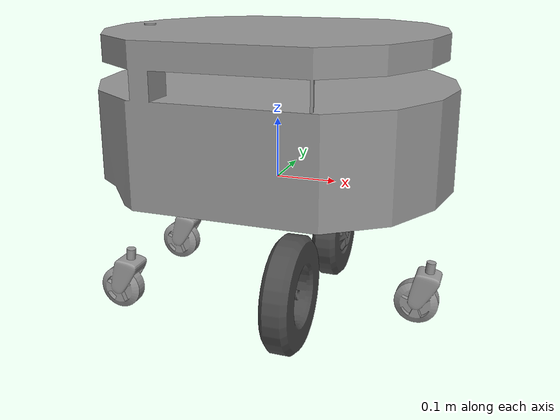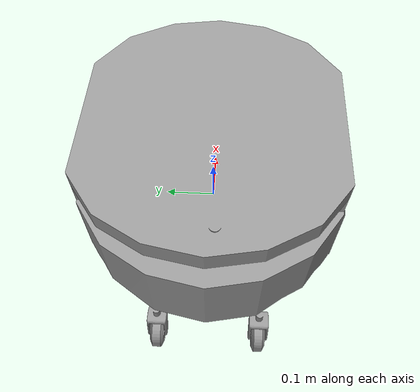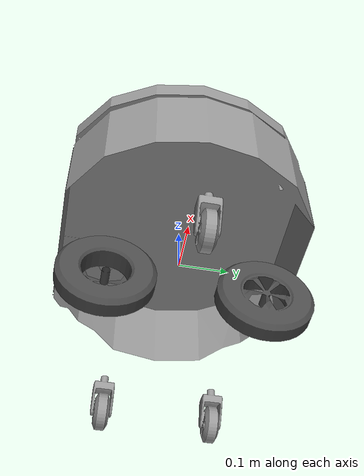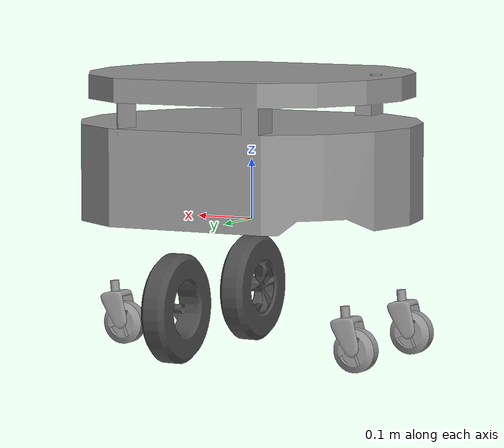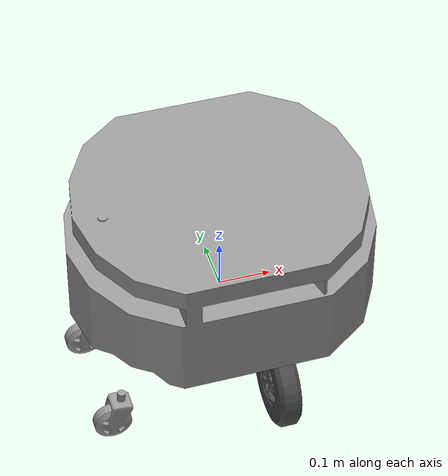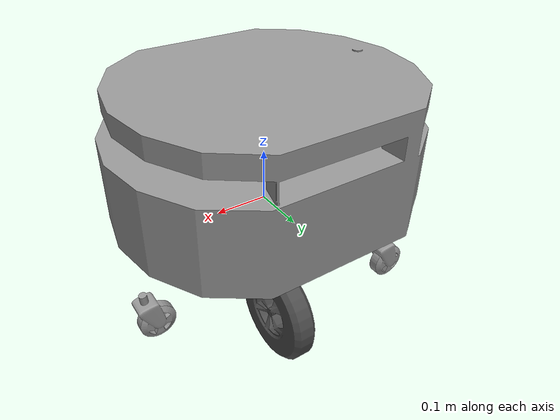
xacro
<?xml version="1.0"?>
<robot xmlns:xacro="http://www.ros.org/wiki/xacro" name="patrolbot">
    <xacro:property name="base_width" value="0.483" />
    <xacro:property name="base_length" value="0.589" />
    <xacro:property name="wheel_radius" value="0.201" />
    <xacro:property name="wheel_center_distance_y" value="0.147" />
    <xacro:property name="ground_clearance" value="0.051" />
    <xacro:property name="base_height" value="${0.378-ground_clearance}" />
    <xacro:property name="z_offset" value="${(0.378-ground_clearance)/2}" />
    <xacro:include filename="$(find patrolbot_description)/urdf/wheel.xacro" />
    <xacro:include filename="$(find patrolbot_description)/urdf/caster.xacro" />
    <xacro:include filename="$(find lms1xx)/urdf/sick_lms1xx.urdf.xacro" />
    <link name="base_footprint">
    </link>
    <joint name="base_footprint_joint" type="fixed">
        <origin rpy="0 0 0" xyz="0 0 0" />
        <parent link="base_footprint" />
        <child link="base_link" />
    </joint>
    <link name="base_link">
        <inertial>
            <mass value="50.0" />
            <origin xyz="0 0 0" rpy="0 0 0" />
            <inertia ixx="0.001" ixy="0.0" ixz="0.001" iyy="1" iyz="0.0" izz="0.001" />
        </inertial>
        <collision>
            <origin xyz="0 0 0" rpy="0 0 0" />
            <geometry>
                <mesh filename="package://patrolbot_description/meshes/hull.stl" scale = "1 1 0.7"/>
            </geometry>
        </collision>
        <visual>
            <origin xyz="0 0 0" rpy="0 0 0" />
            <geometry>
                <mesh filename="package://patrolbot_description/meshes/hull.stl" scale = "1 1 0.7"/>
            </geometry>
        </visual>
    </link>
    <xacro:drive_wheel prefix="right" parent="base_link">
        <origin xyz="${wheel_center_distance_x} ${-wheel_center_distance_y} ${-z_offset+ground_clearance/2}" />
    </xacro:drive_wheel>
    <xacro:drive_wheel prefix="left" parent="base_link">
        <origin xyz="${wheel_center_distance_x} ${wheel_center_distance_y} ${-z_offset+ground_clearance/2}" />
    </xacro:drive_wheel>
    <xacro:caster_wheel prefix="front" parent="base_link">
        <origin xyz="${base_length/2-0.05} 0 ${-z_offset-0.01}" />
    </xacro:caster_wheel>
    <xacro:caster_wheel prefix="back_left" parent="base_link">
        <origin xyz="${-base_length/2+0.05} ${-base_width/3+0.05} ${-z_offset-0.01}" />
    </xacro:caster_wheel>
    <xacro:caster_wheel prefix="back_right" parent="base_link">
        <origin xyz="${-base_length/2+0.05} ${base_width/3-0.05} ${-z_offset-0.01}" />
    </xacro:caster_wheel>
    <gazebo>
        <plugin name="differential_drive_controller" filename="libgazebo_ros_diff_drive.so">

            <!-- Plugin update rate in Hz -->
            <updateRate>50</updateRate>

            <!-- Name of left joint, defaults to `left_joint` -->
            <leftJoint>left_drive_wheel_joint</leftJoint>

            <!-- Name of right joint, defaults to `right_joint` -->
            <rightJoint>right_drive_wheel_joint</rightJoint>

            <!-- The distance from the center of one wheel to the other, in meters, defaults to 0.34 m -->
            <wheelSeparation>${2*wheel_center_distance_y}</wheelSeparation>

            <!-- Diameter of the wheels, in meters, defaults to 0.15 m -->
            <wheelDiameter>${2*wheel_radius}</wheelDiameter>

            <!-- Wheel acceleration, in rad/s^2, defaults to 0.0 rad/s^2 -->
            <wheelAcceleration>0.0</wheelAcceleration>

            <!-- Maximum torque which the wheels can produce, in Nm, defaults to 5 Nm -->
            <wheelTorque>240</wheelTorque>

            <!-- Topic to receive geometry_msgs/Twist message commands, defaults to `cmd_vel` -->
            <commandTopic>cmd_vel</commandTopic>

            <!-- Topic to publish nav_msgs/Odometry messages, defaults to `odom` -->
            <odometryTopic>odom</odometryTopic>

            <!-- Odometry frame, defaults to `odom` -->
            <odometryFrame>odom</odometryFrame>

            <!-- Robot frame to calculate odometry from, defaults to `base_footprint` -->
            <robotBaseFrame>base_footprint</robotBaseFrame>

            <!-- Odometry source, 0 for ENCODER, 1 for WORLD, defaults to WORLD -->
            <odometrySource>1</odometrySource>

            <!-- Set to true to publish transforms for the wheel links, defaults to false -->
            <publishWheelTF>true</publishWheelTF>

            <!-- Set to true to publish transforms for the odometry, defaults to true -->
            <publishOdom>true</publishOdom>

            <!-- Set to true to publish sensor_msgs/JointState on /joint_states for the wheel joints, defaults to false -->
            <publishWheelJointState>true</publishWheelJointState>

            <!-- Set to true to swap right and left wheels, defaults to true -->
            <legacyMode>false</legacyMode>
        </plugin>
    </gazebo>
    <gazebo reference="base_link">
        <material>Gazebo/Gray</material>
    </gazebo>
</robot>

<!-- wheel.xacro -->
<robot xmlns:xacro="http://www.ros.org/wiki/xacro" name="patrolbot">
    <xacro:property name="wheel_radius" value="0.201" />
    <xacro:property name="wheel_width" value="0.05" />
    <xacro:property name="wheel_mass" value="1" />
    <xacro:property name="ground_clearance" value="0.051" />
    <xacro:property name="wheel_center_distance_y" value="0.147" />
    <xacro:property name="wheel_center_distance_x" value="${0.137/2}" />
    <xacro:macro name="drive_wheel" params="prefix parent *origin">
        <link name="${prefix}_drive_wheel">
            <collision>
                <geometry>
                    <mesh filename="package://patrolbot_description/meshes/${prefix}_wheel.stl" />
                </geometry>
            </collision>
            <visual>
                <geometry>
                    <mesh filename="package://patrolbot_description/meshes/${prefix}_wheel.stl" />
                </geometry>
            </visual>
            <inertial>
                <mass value="${wheel_mass}" />
                <inertia ixx="0.001" ixy="0" ixz="0" iyy="0.001" iyz="0" izz="0.001" />
            </inertial>
        </link>
        <joint name="${prefix}_drive_wheel_joint" type="continuous">
            <parent link="${parent}" />
            <child link="${prefix}_drive_wheel" />
            <xacro:insert_block name="origin" />
            <axis xyz="0 1 0" />
            <dynamics damping="0" friction="0" />
        </joint>
        <transmission name="${prefix}_drive_wheel_trans">
            <type>transmission_interface/SimpleTransmission</type>
            <joint name="${prefix}_drive_wheel_joint">
                <hardwareInterface>EffortJointInterface</hardwareInterface>
            </joint>
            <actuator name="${prefix}_drive_wheel_motor">
                <mechanicalReducation>1</mechanicalReducation>
            </actuator>
        </transmission>
        <gazebo reference="${prefix}_drive_wheel">
            <mu1 value="200.0" />
            <mu2 value="100.0" />
            <kp value="10000000.0" />
            <kd value="1.0" />
            <material>Gazebo/DarkGray</material>
        </gazebo>
    </xacro:macro>
</robot>

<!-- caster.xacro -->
<robot xmlns:xacro="http://www.ros.org/wiki/xacro" name="patrolbot">
    <xacro:property name="ground_clearance" value="0.051" />
    <xacro:property name="base_width" value="0.483" />
    <xacro:property name="base_length" value="0.589" />
    <xacro:property name="caster_mass" value="1" />
    <xacro:property name="z_offset" value="${(0.378-ground_clearance)/2}" />
    <xacro:macro name="caster_wheel" params="prefix parent *origin">
        <link name="${prefix}_caster_wheel">
            <collision>
                <geometry>
                    <mesh filename="package://patrolbot_description/meshes/caster.stl" />
                </geometry>
            </collision>
            <visual>
                <geometry>
                    <mesh filename="package://patrolbot_description/meshes/caster.stl" />
                </geometry>
            </visual>
            <inertial>
                <mass value="${caster_mass}" />
                <inertia ixx="0.001" ixy="0" ixz="0" iyy="0.001" iyz="0" izz="0.001" />
            </inertial>
        </link>
        <joint name="${prefix}_drive_wheel_joint" type="fixed">
            <xacro:insert_block name="origin" />
            <parent link="${parent}" />
            <child link="${prefix}_caster_wheel" />
        </joint>
        <gazebo reference="${prefix}_caster_wheel">
            <mu1 value="0.0000001" />
            <mu2 value="0.0000001" />
            <kp value="10000000.0" />
            <kd value="1.0" />
            <material>Gazebo/Grey</material>
        </gazebo>
    </xacro:macro>
</robot>
